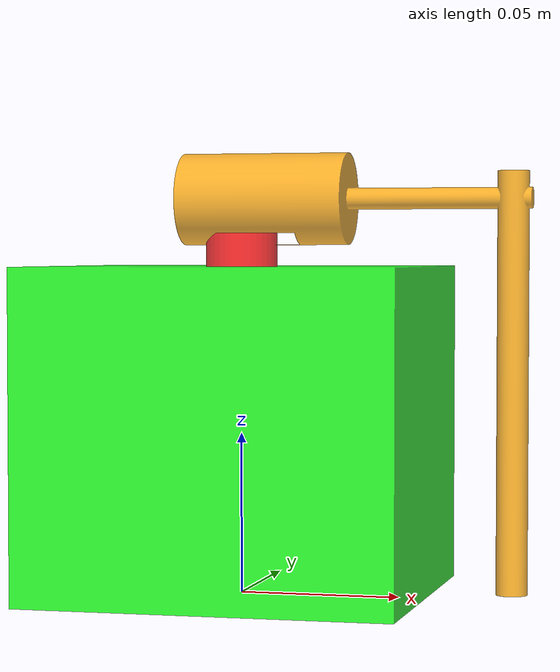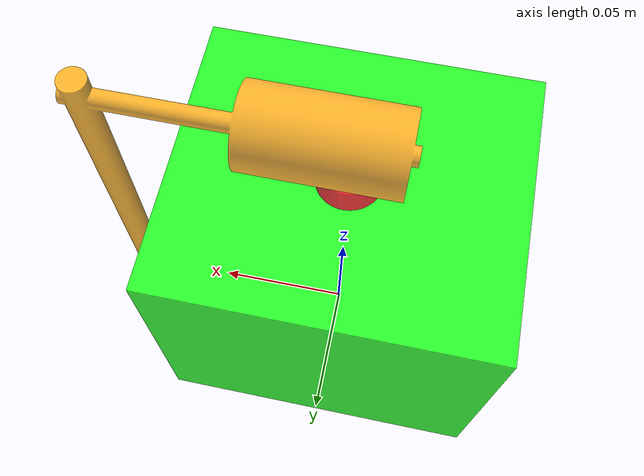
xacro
<?xml version="1.0"?>
<robot name="qube_servo_3" xmlns:xacro="http://www.ros.org/wiki/xacro">

  <!-- constants -->
  <xacro:include filename="$(find pendulum_control)/urdf/qube_constants.xacro"/>

  <!-- inertias -->
  <xacro:include filename="$(find pendulum_control)/urdf/macros/inertia_macros.xacro"/>

  <!-- links -->
  <xacro:include filename="$(find pendulum_control)/urdf/links/world.xacro"/>
  <xacro:include filename="$(find pendulum_control)/urdf/links/base_link.xacro"/>
  <xacro:include filename="$(find pendulum_control)/urdf/links/rotor_link.xacro"/>
  <xacro:include filename="$(find pendulum_control)/urdf/links/pendulum_link.xacro"/>

  <!-- joints -->
  <xacro:include filename="$(find pendulum_control)/urdf/joints/base_joint.xacro"/>
  <xacro:include filename="$(find pendulum_control)/urdf/joints/rotor_joint.xacro"/>
  <xacro:include filename="$(find pendulum_control)/urdf/joints/pendulum_joint.xacro"/>

  <!-- links -->
  <xacro:world/>
  <xacro:base_link/>
  <xacro:rotor_link/>
  <xacro:pendulum_link/>

  <!-- joints -->
  <xacro:base_joint/>
  <xacro:rotor_joint/>
  <xacro:pendulum_joint/>

  <!-- ros2 controll hardware interface -->
  <ros2_control name="GazeboSystem" type="System">
    <hardware>
      <plugin>gz_ros2_control/GazeboSimSystem</plugin>
    </hardware>
    <joint name="rotor_joint">
      <command_interface name="effort"/>
      <state_interface name="position"/>
      <state_interface name="velocity"/>
    </joint>
    <joint name="pendulum_joint">
      <state_interface name="position"/>
      <state_interface name="velocity"/>
    </joint>
  </ros2_control>

  <!-- gazebo plugins -->
  <gazebo>
    <plugin filename="libgz_ros2_control-system.so" name="gz_ros2_control::GazeboSimROS2ControlPlugin">
      <parameters>$(find pendulum_control)/config/controllers.yaml</parameters>
    </plugin>
  </gazebo>

  <!-- gazebo materials -->
  <gazebo reference="base_link">
    <material>Gazebo/Green</material>
  </gazebo>
  <gazebo reference="rotor_link">
    <material>Gazebo/Red</material>
  </gazebo>
  <gazebo reference="pendulum_link">
    <material>Gazebo/Orange</material>
  </gazebo>

  <!-- joint dynamics -->
  <gazebo reference="rotor_joint">
    <implicitSpringDamper>true</implicitSpringDamper>
  </gazebo>
  <gazebo reference="pendulum_joint">
    <implicitSpringDamper>true</implicitSpringDamper>
  </gazebo>

</robot>

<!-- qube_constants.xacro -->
<xacro:constants xmlns:xacro="http://www.ros.org/wiki/xacro">
  <xacro:property name="base_width" value="0.102"/>
  <xacro:property name="base_height" value="0.102"/>
  <xacro:property name="base_depth" value="0.117"/>
  <xacro:property name="base_mass" value="0.5"/>

  <xacro:property name="rotor_radius" value="0.00325"/>
  <xacro:property name="rotor_height" value="0.0104"/>
  <xacro:property name="rotor_mass" value="0.095"/>
  <xacro:property name="rotor_friction" value="0.0"/>
  <xacro:property name="rotor_damping" value="3.611e-5"/>

  <xacro:property name="pendulum_radius" value="0.0048"/>
  <xacro:property name="pendulum_length" value="0.129"/>
  <xacro:property name="pendulum_height" value="0.01042"/>
  <xacro:property name="p_end_to_link" value="0.005"/>
  <xacro:property name="pendulum_mass" value="0.024"/>
  <xacro:property name="pendulum_friction" value="0"/>
  <xacro:property name="pendulum_damping" value="6.33e-6"/>

</xacro:constants>

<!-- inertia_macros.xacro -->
<robot xmlns:xacro="http://www.ros.org/wiki/xacro" name="inertia_macros">

 <xacro:macro name="cyl_inertia" params="mass radius length">
    <inertial>
      <mass value="${mass}"/>
      <!-- COM at geometric center -->
      <origin xyz="${length/2} 0 0" rpy="0 0 0"/>
      <inertia
        ixx="${(1/12.0)*mass*length*length + 0.25*mass*radius*radius}"
        ixy="0" ixz="0"
        iyy="${(1/12.0)*mass*length*length + 0.25*mass*radius*radius}"
        iyz="0"
        izz="${0.5*mass*radius*radius}"/>
    </inertial>
  </xacro:macro>
  <xacro:macro name="base_inertia" params="mass depth width height">
  <inertial>
    <mass value="${mass}"/>
      <origin xyz="${depth/2} ${width/2} ${height/2}" rpy="0 0 0"/>
    <inertia ixx="${mass/6}" ixy="0" ixz="0" iyy="${mass/6}" iyz="0" izz="${mass/6}"/>
  </inertial>
  </xacro:macro>

</robot>

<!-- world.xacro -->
<robot xmlns:xacro="http://www.ros.org/wiki/xacro" name="world_macros">

  <xacro:macro name="world" params="">
    <link name="world"/>
  </xacro:macro>

</robot>

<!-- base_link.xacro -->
<robot xmlns:xacro="http://www.ros.org/wiki/xacro" name="link_macros">

  <xacro:macro name="base_link" params="">
    <link name="base_link">

      <!-- Visual -->
      <visual>
        <origin xyz="0 0 0" rpy="0 0 0"/>
        <geometry>
          <mesh filename="package://pendulum_control/urdf/mesh/base.stl" scale="0.001 0.001 0.001"/>
        </geometry>
        <material name="green">
          <color rgba="0 1 0 0.8"/>
        </material>
      </visual>

      <!-- Collision -->
      <collision>
        <origin xyz="0 0 0" rpy="0 0 0"/>
        <geometry>
          <mesh filename="package://pendulum_control/urdf/mesh/base.stl" scale="0.001 0.001 0.001"/>
        </geometry>
      </collision>

      <!-- Inertia -->
      <xacro:base_inertia
        mass="${base_mass}"
        depth="${base_depth}"
        width="${base_width}"
        height="${base_height}"
      />

    </link>
  </xacro:macro>

</robot>

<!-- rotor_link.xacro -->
<robot xmlns:xacro="http://www.ros.org/wiki/xacro" name="link_macros">

  <xacro:macro name="rotor_link" params="">
    <link name="rotor_link">

      <!-- Visual -->
      <visual>
        <origin xyz="0 0 ${-rotor_height-pendulum_height}" rpy="0 0 0"/>
        <geometry>
          <mesh filename="package://pendulum_control/urdf/mesh/rotor.stl" scale="0.001 0.001 0.001"/>
        </geometry>
        <material name="red">
          <color rgba="1 0 0 0.8"/>
        </material>
      </visual>

      <!-- Collision -->
      <collision>
        <origin xyz="0 0 0" rpy="0 0 0"/>
        <mesh filename="package://pendulum_control/urdf/mesh/rotor.stl" scale="0.001 0.001 0.001"/>
      </collision>

      <!-- Inertia -->
    <inertial>
      <origin xyz="0 0 0" rpy="0 0 0"/>
        <mass value="${rotor_mass}"/>
       <inertia
          ixx="0.0003716"
          ixy="0"
          ixz="0"
          iyy="0.0003716"
          iyz="0"
          izz="0.0003716"/>
      </inertial>
    </link>
  </xacro:macro>

  </robot>

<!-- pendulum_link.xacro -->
<robot xmlns:xacro="http://www.ros.org/wiki/xacro" name="link_macros">

  <xacro:macro name="pendulum_link" params="">
    <link name="pendulum_link">

      <!-- Visual -->
      <visual>
        <origin xyz="0 0 0" rpy="0 -1.5708 0"/>
        <geometry>
          <mesh filename="package://pendulum_control/urdf/mesh/pendulum.stl" scale="0.001 0.001 0.001"/>
        </geometry>
        <material name="orange">
          <color rgba="1 0.65 0 0.8"/>
        </material>
      </visual>

      <!-- Collision -->
      <collision>
        <origin xyz="0 0 0" rpy="0 -1.5708 0"/>
        <geometry>
          <mesh filename="package://pendulum_control/urdf/mesh/pendulum.stl" scale="0.001 0.001 0.001"/>
        </geometry>
      </collision>

      <!-- Inertia -->
     <inertial>
        <origin xyz="0.0130 0 0.0511" rpy="0 0 0"/>
        <mass value="${pendulum_mass}"/>
        <inertia
          ixx="9.20e-5"
          ixy="0"
          ixz="-5.25e-5"
          iyy="2.05e-4"
          iyz="0"
          izz="1.14e-4"/>
     </inertial>
    </link>
  </xacro:macro>

</robot>

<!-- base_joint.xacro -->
<robot xmlns:xacro="http://www.ros.org/wiki/xacro" name="joint_macros">

  <xacro:macro name="base_joint" params="">
    <joint name="base_joint" type="fixed">
      <parent link="world"/>
      <child link="base_link"/>
      <origin xyz="0 0 0" rpy="0 0 0"/>
    </joint>
  </xacro:macro>

</robot>

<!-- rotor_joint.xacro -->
<robot xmlns:xacro="http://www.ros.org/wiki/xacro" name="joint_macros">

  <xacro:macro name="rotor_joint" params="">
    <joint name="rotor_joint" type="revolute">

      <parent link="base_link"/>
      <child link="rotor_link"/>

      <origin xyz="0 0 ${base_height+rotor_height+pendulum_height}" rpy="0 0 0"/>

      <axis xyz="0 0 1"/>

      <limit effort="2" velocity="20" lower="-1.5708" upper="1.5708"/>

      <dynamics damping="${rotor_damping}" friction="${rotor_friction}"/>

    </joint>
  </xacro:macro>

</robot>

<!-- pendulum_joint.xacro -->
<robot xmlns:xacro="http://www.ros.org/wiki/xacro" name="joint_macros">

  <xacro:macro name="pendulum_joint" params="">
    <joint name="pendulum_joint" type="continuous">

      <parent link="rotor_link"/>
      <child link="pendulum_link"/>

      <origin xyz="0 0 0" rpy="0 1.5708 0"/>

      <axis xyz="0 0 1"/>

      <limit effort="100" velocity="20"/>
      <dynamics damping="${pendulum_damping}" friction="${pendulum_friction}"/>

    </joint>
  </xacro:macro>

</robot>
